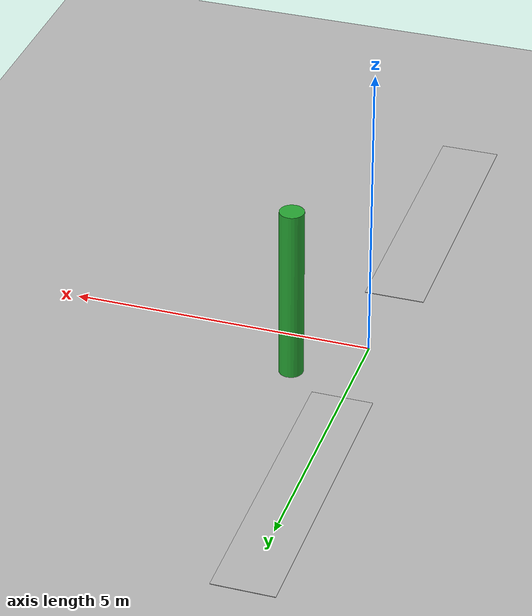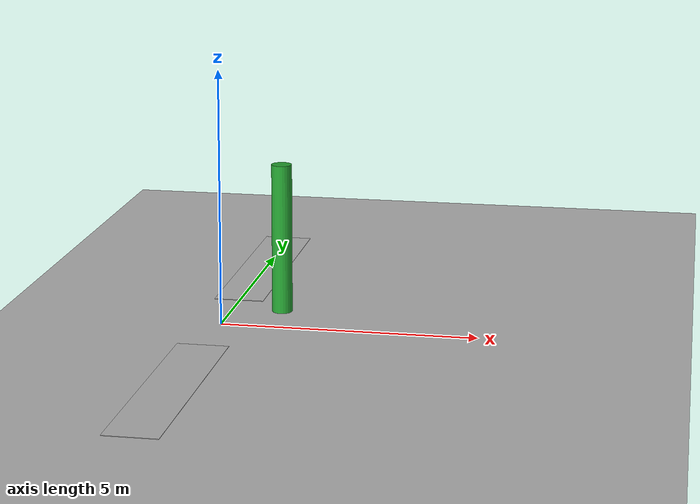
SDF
<sdf version="1.5">
 <world name="default">
  <physics type="ode">
   <gravity>0 0 -9.8066</gravity>
   <ode>
    <solver>
     <type>quick</type>
     <iters>10</iters>
     <sor>1.3</sor>
     <use_dynamic_moi_rescaling>0</use_dynamic_moi_rescaling>
    </solver>
    <constraints>
     <cfm>0.0</cfm>
     <erp>0.2</erp>
     <contact_max_correcting_vel>100</contact_max_correcting_vel>
     <contact_surface_layer>0.001</contact_surface_layer>
    </constraints>
   </ode>
   <max_step_size>0.004</max_step_size>
   <real_time_factor>1.0</real_time_factor>
   <real_time_update_rate>250</real_time_update_rate>
   <magnetic_field>6.0e-6 2.3e-5 -4.2e-5</magnetic_field>
  </physics>
  <light type="directional" name="sun">
   <cast_shadows>false</cast_shadows>
   <pose>0 0 100 0 0 0</pose>
   <diffuse>0.8 0.8 0.8 1</diffuse>
   <specular>0.9 0.9 0.9 1</specular>
   <attenuation>
    <range>1000</range>
    <constant>0.9</constant>
    <linear>0.01</linear>
    <quadratic>0.001</quadratic>
   </attenuation>
   <direction>0.2 0.2 -0.9</direction>
  </light>
  <include><uri>model://ground_plane</uri></include>
  <model name="texture">
   <static>true</static>
   <link name="lawn_ground">
    <visual name="visual">
     <cast_shadows>false</cast_shadows>
     <geometry><box><size>40 40 0.05</size></box></geometry>
     <material>
      <script>
       <uri>model://lawn_plane/materials/scripts</uri>
       <uri>model://lawn_plane/materials/textures</uri>
       <name>vrc/lawn</name>
      </script>
     </material>
    </visual>
   </link>
   <link name="sysu_logo2">
    <pose>-0.0 -4.0 0.05 0 0 0</pose>
    <visual name="visual">
     <cast_shadows>false</cast_shadows>
     <geometry><box><size>1.0 5.0 0.01</size></box></geometry>
     <material><script><uri>model://texture_CXY/texture.material</uri><name>xty</name></script></material>
    </visual>
   </link>
   <link name="sysu_logo">
    <pose>-0.0 4.0 0.05 0 0 0</pose>
    <visual name="visual">
     <cast_shadows>false</cast_shadows>
     <geometry><box><size>1.0 5.0 0.01</size></box></geometry>
     <material><script><uri>model://texture_CXY/texture.material</uri><name>xty</name></script></material>
    </visual>
   </link>
  </model>
  <model name="cylinder_1"><include><uri>model://cylinder</uri><pose>1.0 1.0 1.5 0 0 0</pose></include></model>
 </world>
</sdf>

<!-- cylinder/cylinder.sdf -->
<sdf version='1.6'>
  <model name='cylinder'>
    <link name='link'>
      <inertial>
        <mass>1</mass>
        <pose frame=''>0 0 0 0 -0 0</pose>
      </inertial>
      <self_collide>0</self_collide>
      <enable_wind>0</enable_wind>
      <kinematic>0</kinematic>
      <pose frame=''>0 0 0 0 -0 0</pose>
      <gravity>1</gravity>
      <visual name='visual'>
        <geometry>
          <cylinder>
            <radius>0.2</radius>
            <length>3.0</length>
          </cylinder>
        </geometry>
        <material>
          <script>
            <name>Gazebo/Green</name>
            <uri>file://media/materials/scripts/gazebo.material</uri>
          </script>
          <shader type='pixel'>
            <normal_map>__default__</normal_map>
          </shader>
          <ambient>0. 0.914 0. 1</ambient>
          <diffuse>0.7 0.7 0.7 1</diffuse>
          <specular>0.01 0.01 0.01 1</specular>
          <emissive>0 0 0 1</emissive>
        </material>
        <pose frame=''>0 0 0 0 -0 0</pose>
        <transparency>0</transparency>
        <cast_shadows>1</cast_shadows>
      </visual>
    </link>
    <static>1</static>
    <allow_auto_disable>1</allow_auto_disable>
  </model>
</sdf>
